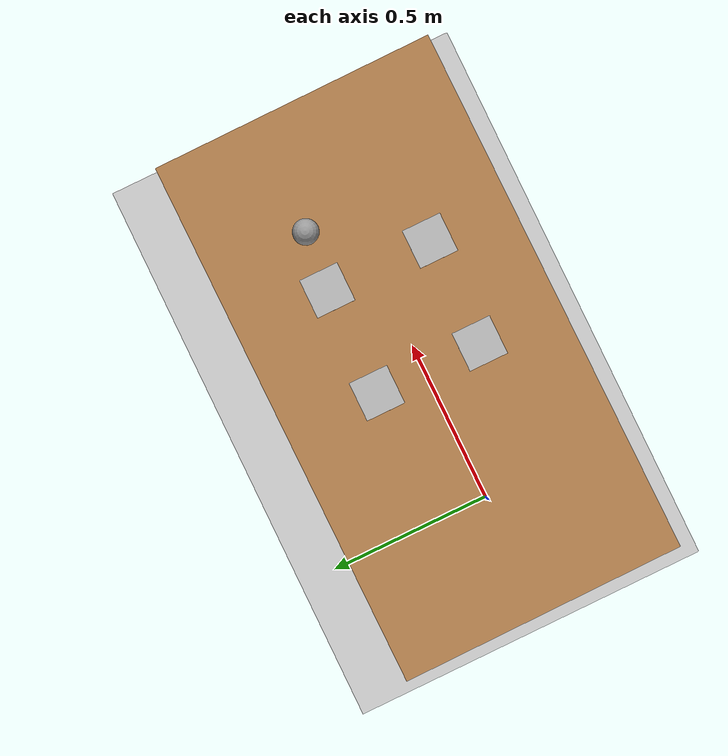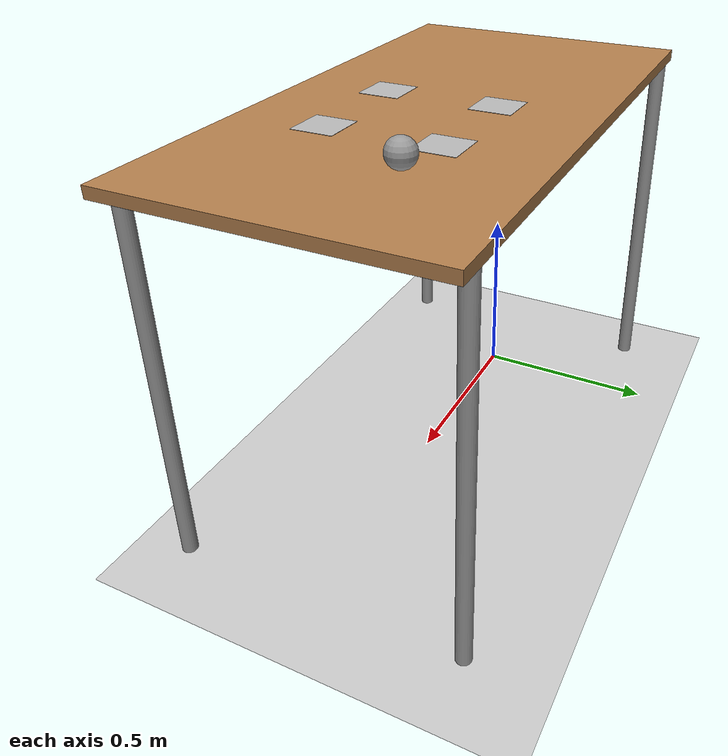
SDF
<sdf version="1.7">
 <world name="CRANE-X7 with Table">
  <scene><shadows>0</shadows><ambient>0.4 0.4 0.4 1</ambient><background>0.7 0.7 0.7 1</background></scene>
  <light name="sun" type="directional">
   <pose>0 0 10 0 -0 0</pose>
   <diffuse>0.8 0.8 0.8 1</diffuse>
   <specular>0.2 0.2 0.2 1</specular>
   <attenuation>
    <range>1000</range>
    <constant>0.9</constant>
    <linear>0.01</linear>
    <quadratic>0.001</quadratic>
   </attenuation>
   <direction>-0.5 0.1 -0.9</direction>
   <spot><inner_angle>0</inner_angle><outer_angle>0</outer_angle><falloff>0</falloff></spot>
  </light>
  <model name="table">
   <frame name="table::__model__" attached_to="table::link">
    <pose relative_to="__model__">0 0 0 0 -0 0</pose>
   </frame>
   <static>1</static>
   <link name="table::link">
    <collision name="surface">
     <pose>0 0 1 0 -0 0</pose>
     <geometry><box><size>1.5 0.8 0.03</size></box></geometry>
     <surface><friction><ode><mu>0.6</mu><mu2>0.6</mu2></ode></friction></surface>
    </collision>
    <visual name="visual1">
     <pose>0 0 1 0 -0 0</pose>
     <geometry><box><size>1.5 0.8 0.03</size></box></geometry>
     <material>
      <script><uri>file://media/materials/scripts/gazebo.material</uri><name>Gazebo/Wood</name></script>
     </material>
    </visual>
    <collision name="front_left_leg">
     <pose>0.68 0.38 0.5 0 -0 0</pose>
     <geometry><cylinder><radius>0.02</radius><length>1</length></cylinder></geometry>
    </collision>
    <visual name="front_left_leg">
     <pose>0.68 0.38 0.5 0 -0 0</pose>
     <geometry><cylinder><radius>0.02</radius><length>1</length></cylinder></geometry>
     <material>
      <script><uri>file://media/materials/scripts/gazebo.material</uri><name>Gazebo/Grey</name></script>
     </material>
    </visual>
    <collision name="front_right_leg">
     <pose>0.68 -0.38 0.5 0 -0 0</pose>
     <geometry><cylinder><radius>0.02</radius><length>1</length></cylinder></geometry>
    </collision>
    <visual name="front_right_leg">
     <pose>0.68 -0.38 0.5 0 -0 0</pose>
     <geometry><cylinder><radius>0.02</radius><length>1</length></cylinder></geometry>
     <material>
      <script><uri>file://media/materials/scripts/gazebo.material</uri><name>Gazebo/Grey</name></script>
     </material>
    </visual>
    <collision name="back_right_leg">
     <pose>-0.68 -0.38 0.5 0 -0 0</pose>
     <geometry><cylinder><radius>0.02</radius><length>1</length></cylinder></geometry>
    </collision>
    <visual name="back_right_leg">
     <pose>-0.68 -0.38 0.5 0 -0 0</pose>
     <geometry><cylinder><radius>0.02</radius><length>1</length></cylinder></geometry>
     <material>
      <script><uri>file://media/materials/scripts/gazebo.material</uri><name>Gazebo/Grey</name></script>
     </material>
    </visual>
    <collision name="back_left_leg">
     <pose>-0.68 0.38 0.5 0 -0 0</pose>
     <geometry><cylinder><radius>0.02</radius><length>1</length></cylinder></geometry>
    </collision>
    <visual name="back_left_leg">
     <pose>-0.68 0.38 0.5 0 -0 0</pose>
     <geometry><cylinder><radius>0.02</radius><length>1</length></cylinder></geometry>
     <material>
      <script><uri>file://media/materials/scripts/gazebo.material</uri><name>Gazebo/Grey</name></script>
     </material>
    </visual>
    <pose relative_to="table::__model__">0 0 0 0 -0 0</pose>
   </link>
   <pose>0.438973 0.013251 0 0 -0 0.006788</pose>
  </model>
  <model name="ground_plane">
   <frame name="ground_plane::__model__" attached_to="ground_plane::link">
    <pose relative_to="__model__">0 0 0 0 -0 0</pose>
   </frame>
   <static>1</static>
   <link name="ground_plane::link">
    <collision name="collision">
     <geometry><plane><normal>0 0 1</normal><size>100 100</size></plane></geometry>
     <surface>
      <contact><collide_bitmask>65535</collide_bitmask></contact>
      <friction><ode><mu>100</mu><mu2>50</mu2></ode></friction>
     </surface>
    </collision>
    <visual name="visual">
     <cast_shadows>0</cast_shadows>
     <geometry><plane><normal>0 0 1</normal><size>100 100</size></plane></geometry>
     <material>
      <script><uri>file://media/materials/scripts/gazebo.material</uri><name>Gazebo/Grey</name></script>
     </material>
    </visual>
    <pose relative_to="ground_plane::__model__">0 0 0 0 -0 0</pose>
   </link>
   <joint name="ground_joint" type="fixed"><parent>ground_plane::link</parent><child>table::link</child></joint>
  </model>
  <gravity>0 0 -9.8</gravity>
  <magnetic_field>6e-06 2.3e-05 -4.2e-05</magnetic_field>
  <atmosphere type="adiabatic"/>
  <physics type="ode">
   <max_step_size>0.001</max_step_size>
   <real_time_factor>1</real_time_factor>
   <real_time_update_rate>1000</real_time_update_rate>
  </physics>
  <spherical_coordinates>
   <surface_model>EARTH_WGS84</surface_model>
   <latitude_deg>0</latitude_deg>
   <longitude_deg>0</longitude_deg>
   <elevation>0</elevation>
   <heading_deg>0</heading_deg>
  </spherical_coordinates>
  <model name="marker000">
   <link name="link">
    <inertial>
     <inertia><ixx>1</ixx><ixy>0</ixy><ixz>0</ixz><iyy>1</iyy><iyz>0</iyz><izz>1</izz></inertia>
     <mass>1</mass>
    </inertial>
    <visual name="visual">
     <geometry><box><size>0.11 0.11 0.004</size></box></geometry>
     <material>
      <script><uri>model://marker000/materials/marker000.material</uri><name>marker000</name></script>
      <shader type="pixel"/>
     </material>
    </visual>
   </link>
   <static>1</static>
   <pose>0.7 0.15 1.014 0 -0 0</pose>
  </model>
  <model name="marker001">
   <link name="link">
    <inertial>
     <inertia><ixx>1</ixx><ixy>0</ixy><ixz>0</ixz><iyy>1</iyy><iyz>0</iyz><izz>1</izz></inertia>
     <mass>1</mass>
    </inertial>
    <visual name="visual">
     <geometry><box><size>0.11 0.11 0.004</size></box></geometry>
     <material>
      <script><uri>model://marker001/materials/marker001.material</uri><name>marker001</name></script>
      <shader type="pixel"/>
     </material>
    </visual>
   </link>
   <static>1</static>
   <pose>0.7 -0.15 1.014 0 -0 0</pose>
  </model>
  <model name="marker002">
   <link name="link">
    <inertial>
     <inertia><ixx>1</ixx><ixy>0</ixy><ixz>0</ixz><iyy>1</iyy><iyz>0</iyz><izz>1</izz></inertia>
     <mass>1</mass>
    </inertial>
    <visual name="visual">
     <geometry><box><size>0.11 0.11 0.004</size></box></geometry>
     <material>
      <script><uri>model://marker002/materials/marker002.material</uri><name>marker002</name></script>
      <shader type="pixel"/>
     </material>
    </visual>
   </link>
   <static>1</static>
   <pose>0.4 0.15 1.014 0 -0 0</pose>
  </model>
  <model name="marker003">
   <link name="link">
    <inertial>
     <inertia><ixx>1</ixx><ixy>0</ixy><ixz>0</ixz><iyy>1</iyy><iyz>0</iyz><izz>1</izz></inertia>
     <mass>1</mass>
    </inertial>
    <visual name="visual">
     <geometry><box><size>0.11 0.11 0.004</size></box></geometry>
     <material>
      <script><uri>model://marker003/materials/marker003.material</uri><name>marker003</name></script>
      <shader type="pixel"/>
     </material>
    </visual>
   </link>
   <static>1</static>
   <pose>0.4 -0.15 1.014 0 -0 0</pose>
  </model>
  <model name="unit_sphere">
   <pose>0.860372 0.133938 1.05093 0 -0 0</pose>
   <link name="link">
    <inertial>
     <mass>1</mass>
     <inertia><ixx>0.1</ixx><ixy>0</ixy><ixz>0</ixz><iyy>0.1</iyy><iyz>0</iyz><izz>0.1</izz></inertia>
    </inertial>
    <collision name="collision"><geometry><sphere><radius>0.0359325</radius></sphere></geometry></collision>
    <visual name="visual">
     <geometry><sphere><radius>0.0359325</radius></sphere></geometry>
     <material>
      <script><name>Gazebo/Grey</name><uri>file://media/materials/scripts/gazebo.material</uri></script>
     </material>
    </visual>
   </link>
  </model>
 </world>
</sdf>
